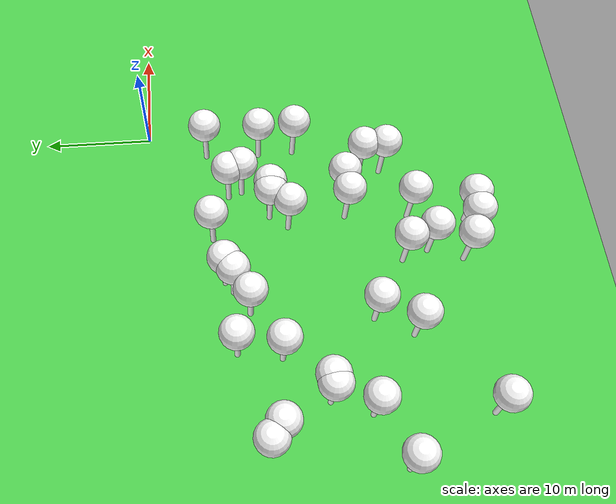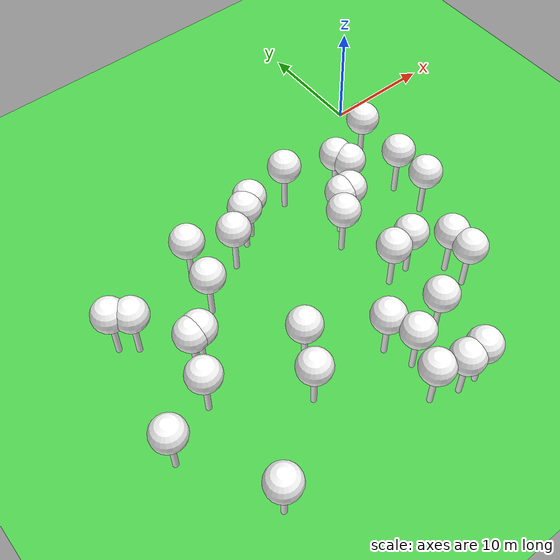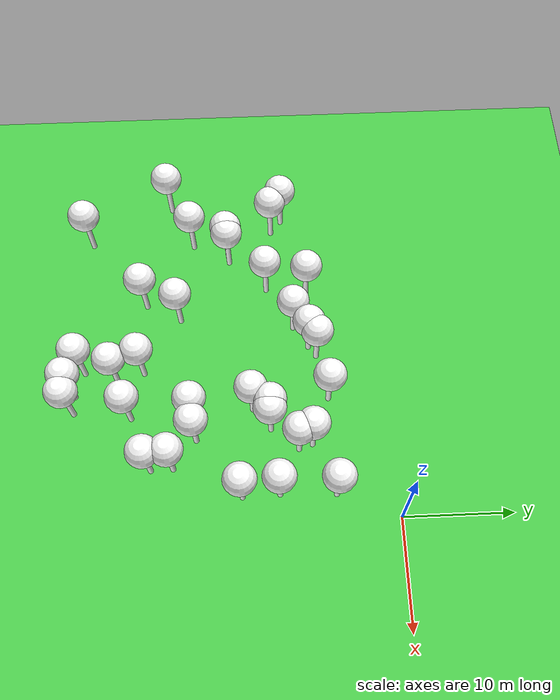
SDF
<sdf version="1.8">
 <world name="forest_world">
  <model name="tree_simple418">
   <static>1</static>
   <link name="link">
    <pose>0 0 0.1 0 -0 0</pose>
    <collision name="collision_trunk">
     <pose>0 0 2 0 -0 0</pose>
     <geometry><cylinder><radius>0.25</radius><length>4</length></cylinder></geometry>
    </collision>
    <collision name="collision_treetop">
     <pose>0 0 5.2 0 -0 0</pose>
     <geometry><sphere><radius>1.5</radius></sphere></geometry>
    </collision>
    <visual name="trunk_418">
     <pose>0 0 2 0 -0 0</pose>
     <geometry><cylinder><radius>0.25</radius><length>4</length></cylinder></geometry>
     <material>
      <ambient>0.5 0.5 0.5 1</ambient>
      <diffuse>1.0 1.0 1.0 1</diffuse>
      <specular>0.0 0.0 0.0 1</specular>
      <pbr>
       <metal>
        <albedo_map>file://textures/tree_simple_trunk.jpg</albedo_map>
        <metalness>0.0</metalness>
        <roughness>0.8</roughness>
       </metal>
      </pbr>
     </material>
    </visual>
    <visual name="treetop_418">
     <pose>0 0 5.2 0 -0 0</pose>
     <geometry><sphere><radius>1.5</radius></sphere></geometry>
     <material>
      <ambient>0.5 0.5 0.5 1</ambient>
      <diffuse>1.0 1.0 1.0 1</diffuse>
      <specular>0.0 0.0 0.0 1</specular>
      <pbr>
       <metal>
        <albedo_map>file://textures/tree_simple_treetop.jpg</albedo_map>
        <metalness>0.0</metalness>
        <roughness>0.9</roughness>
       </metal>
      </pbr>
     </material>
    </visual>
   </link>
   <pose>-22.9841604277 -7.39292719752 0 0 -0 0</pose>
  </model>
  <model name="tree_simple415">
   <static>1</static>
   <link name="link">
    <pose>0 0 0.1 0 -0 0</pose>
    <collision name="collision_trunk">
     <pose>0 0 2 0 -0 0</pose>
     <geometry><cylinder><radius>0.25</radius><length>4</length></cylinder></geometry>
    </collision>
    <collision name="collision_treetop">
     <pose>0 0 5.2 0 -0 0</pose>
     <geometry><sphere><radius>1.5</radius></sphere></geometry>
    </collision>
    <visual name="trunk_415">
     <pose>0 0 2 0 -0 0</pose>
     <geometry><cylinder><radius>0.25</radius><length>4</length></cylinder></geometry>
     <material>
      <ambient>0.5 0.5 0.5 1</ambient>
      <diffuse>1.0 1.0 1.0 1</diffuse>
      <specular>0.0 0.0 0.0 1</specular>
      <pbr>
       <metal>
        <albedo_map>file://textures/tree_simple_trunk.jpg</albedo_map>
        <metalness>0.0</metalness>
        <roughness>0.8</roughness>
       </metal>
      </pbr>
     </material>
    </visual>
    <visual name="treetop_415">
     <pose>0 0 5.2 0 -0 0</pose>
     <geometry><sphere><radius>1.5</radius></sphere></geometry>
     <material>
      <ambient>0.5 0.5 0.5 1</ambient>
      <diffuse>1.0 1.0 1.0 1</diffuse>
      <specular>0.0 0.0 0.0 1</specular>
      <pbr>
       <metal>
        <albedo_map>file://textures/tree_simple_treetop.jpg</albedo_map>
        <metalness>0.0</metalness>
        <roughness>0.9</roughness>
       </metal>
      </pbr>
     </material>
    </visual>
   </link>
   <pose>-11.6355979465 -5.8252534874 0 0 -0 0</pose>
  </model>
  <model name="tree_simple395">
   <static>1</static>
   <link name="link">
    <pose>0 0 0.1 0 -0 0</pose>
    <collision name="collision_trunk">
     <pose>0 0 2 0 -0 0</pose>
     <geometry><cylinder><radius>0.25</radius><length>4</length></cylinder></geometry>
    </collision>
    <collision name="collision_treetop">
     <pose>0 0 5.2 0 -0 0</pose>
     <geometry><sphere><radius>1.5</radius></sphere></geometry>
    </collision>
    <visual name="trunk_395">
     <pose>0 0 2 0 -0 0</pose>
     <geometry><cylinder><radius>0.25</radius><length>4</length></cylinder></geometry>
     <material>
      <ambient>0.5 0.5 0.5 1</ambient>
      <diffuse>1.0 1.0 1.0 1</diffuse>
      <specular>0.0 0.0 0.0 1</specular>
      <pbr>
       <metal>
        <albedo_map>file://textures/tree_simple_trunk.jpg</albedo_map>
        <metalness>0.0</metalness>
        <roughness>0.8</roughness>
       </metal>
      </pbr>
     </material>
    </visual>
    <visual name="treetop_395">
     <pose>0 0 5.2 0 -0 0</pose>
     <geometry><sphere><radius>1.5</radius></sphere></geometry>
     <material>
      <ambient>0.5 0.5 0.5 1</ambient>
      <diffuse>1.0 1.0 1.0 1</diffuse>
      <specular>0.0 0.0 0.0 1</specular>
      <pbr>
       <metal>
        <albedo_map>file://textures/tree_simple_treetop.jpg</albedo_map>
        <metalness>0.0</metalness>
        <roughness>0.9</roughness>
       </metal>
      </pbr>
     </material>
    </visual>
   </link>
   <pose>-14.8909068885 -23.0244241553 0 0 -0 0</pose>
  </model>
  <model name="tree_simple392">
   <static>1</static>
   <link name="link">
    <pose>0 0 0.1 0 -0 0</pose>
    <collision name="collision_trunk">
     <pose>0 0 2 0 -0 0</pose>
     <geometry><cylinder><radius>0.25</radius><length>4</length></cylinder></geometry>
    </collision>
    <collision name="collision_treetop">
     <pose>0 0 5.2 0 -0 0</pose>
     <geometry><sphere><radius>1.5</radius></sphere></geometry>
    </collision>
    <visual name="trunk_392">
     <pose>0 0 2 0 -0 0</pose>
     <geometry><cylinder><radius>0.25</radius><length>4</length></cylinder></geometry>
     <material>
      <ambient>0.5 0.5 0.5 1</ambient>
      <diffuse>1.0 1.0 1.0 1</diffuse>
      <specular>0.0 0.0 0.0 1</specular>
      <pbr>
       <metal>
        <albedo_map>file://textures/tree_simple_trunk.jpg</albedo_map>
        <metalness>0.0</metalness>
        <roughness>0.8</roughness>
       </metal>
      </pbr>
     </material>
    </visual>
    <visual name="treetop_392">
     <pose>0 0 5.2 0 -0 0</pose>
     <geometry><sphere><radius>1.5</radius></sphere></geometry>
     <material>
      <ambient>0.5 0.5 0.5 1</ambient>
      <diffuse>1.0 1.0 1.0 1</diffuse>
      <specular>0.0 0.0 0.0 1</specular>
      <pbr>
       <metal>
        <albedo_map>file://textures/tree_simple_treetop.jpg</albedo_map>
        <metalness>0.0</metalness>
        <roughness>0.9</roughness>
       </metal>
      </pbr>
     </material>
    </visual>
   </link>
   <pose>-2.49227665262 -10.6347787598 0 0 -0 0</pose>
  </model>
  <model name="tree_simple386">
   <static>1</static>
   <link name="link">
    <pose>0 0 0.1 0 -0 0</pose>
    <collision name="collision_trunk">
     <pose>0 0 2 0 -0 0</pose>
     <geometry><cylinder><radius>0.25</radius><length>4</length></cylinder></geometry>
    </collision>
    <collision name="collision_treetop">
     <pose>0 0 5.2 0 -0 0</pose>
     <geometry><sphere><radius>1.5</radius></sphere></geometry>
    </collision>
    <visual name="trunk_386">
     <pose>0 0 2 0 -0 0</pose>
     <geometry><cylinder><radius>0.25</radius><length>4</length></cylinder></geometry>
     <material>
      <ambient>0.5 0.5 0.5 1</ambient>
      <diffuse>1.0 1.0 1.0 1</diffuse>
      <specular>0.0 0.0 0.0 1</specular>
      <pbr>
       <metal>
        <albedo_map>file://textures/tree_simple_trunk.jpg</albedo_map>
        <metalness>0.0</metalness>
        <roughness>0.8</roughness>
       </metal>
      </pbr>
     </material>
    </visual>
    <visual name="treetop_386">
     <pose>0 0 5.2 0 -0 0</pose>
     <geometry><sphere><radius>1.5</radius></sphere></geometry>
     <material>
      <ambient>0.5 0.5 0.5 1</ambient>
      <diffuse>1.0 1.0 1.0 1</diffuse>
      <specular>0.0 0.0 0.0 1</specular>
      <pbr>
       <metal>
        <albedo_map>file://textures/tree_simple_treetop.jpg</albedo_map>
        <metalness>0.0</metalness>
        <roughness>0.9</roughness>
       </metal>
      </pbr>
     </material>
    </visual>
   </link>
   <pose>-19.2490777258 -8.77456979873 0 0 -0 0</pose>
  </model>
  <model name="tree_simple371">
   <static>1</static>
   <link name="link">
    <pose>0 0 0.1 0 -0 0</pose>
    <collision name="collision_trunk">
     <pose>0 0 2 0 -0 0</pose>
     <geometry><cylinder><radius>0.25</radius><length>4</length></cylinder></geometry>
    </collision>
    <collision name="collision_treetop">
     <pose>0 0 5.2 0 -0 0</pose>
     <geometry><sphere><radius>1.5</radius></sphere></geometry>
    </collision>
    <visual name="trunk_371">
     <pose>0 0 2 0 -0 0</pose>
     <geometry><cylinder><radius>0.25</radius><length>4</length></cylinder></geometry>
     <material>
      <ambient>0.5 0.5 0.5 1</ambient>
      <diffuse>1.0 1.0 1.0 1</diffuse>
      <specular>0.0 0.0 0.0 1</specular>
      <pbr>
       <metal>
        <albedo_map>file://textures/tree_simple_trunk.jpg</albedo_map>
        <metalness>0.0</metalness>
        <roughness>0.8</roughness>
       </metal>
      </pbr>
     </material>
    </visual>
    <visual name="treetop_371">
     <pose>0 0 5.2 0 -0 0</pose>
     <geometry><sphere><radius>1.5</radius></sphere></geometry>
     <material>
      <ambient>0.5 0.5 0.5 1</ambient>
      <diffuse>1.0 1.0 1.0 1</diffuse>
      <specular>0.0 0.0 0.0 1</specular>
      <pbr>
       <metal>
        <albedo_map>file://textures/tree_simple_treetop.jpg</albedo_map>
        <metalness>0.0</metalness>
        <roughness>0.9</roughness>
       </metal>
      </pbr>
     </material>
    </visual>
   </link>
   <pose>-15.0952400949 -28.608477139 0 0 -0 0</pose>
  </model>
  <model name="tree_simple364">
   <static>1</static>
   <link name="link">
    <pose>0 0 0.1 0 -0 0</pose>
    <collision name="collision_trunk">
     <pose>0 0 2 0 -0 0</pose>
     <geometry><cylinder><radius>0.25</radius><length>4</length></cylinder></geometry>
    </collision>
    <collision name="collision_treetop">
     <pose>0 0 5.2 0 -0 0</pose>
     <geometry><sphere><radius>1.5</radius></sphere></geometry>
    </collision>
    <visual name="trunk_364">
     <pose>0 0 2 0 -0 0</pose>
     <geometry><cylinder><radius>0.25</radius><length>4</length></cylinder></geometry>
     <material>
      <ambient>0.5 0.5 0.5 1</ambient>
      <diffuse>1.0 1.0 1.0 1</diffuse>
      <specular>0.0 0.0 0.0 1</specular>
      <pbr>
       <metal>
        <albedo_map>file://textures/tree_simple_trunk.jpg</albedo_map>
        <metalness>0.0</metalness>
        <roughness>0.8</roughness>
       </metal>
      </pbr>
     </material>
    </visual>
    <visual name="treetop_364">
     <pose>0 0 5.2 0 -0 0</pose>
     <geometry><sphere><radius>1.5</radius></sphere></geometry>
     <material>
      <ambient>0.5 0.5 0.5 1</ambient>
      <diffuse>1.0 1.0 1.0 1</diffuse>
      <specular>0.0 0.0 0.0 1</specular>
      <pbr>
       <metal>
        <albedo_map>file://textures/tree_simple_treetop.jpg</albedo_map>
        <metalness>0.0</metalness>
        <roughness>0.9</roughness>
       </metal>
      </pbr>
     </material>
    </visual>
   </link>
   <pose>-5.23612591395 -20.1562951187 0 0 -0 0</pose>
  </model>
  <model name="tree_simple349">
   <static>1</static>
   <link name="link">
    <pose>0 0 0.1 0 -0 0</pose>
    <collision name="collision_trunk">
     <pose>0 0 2 0 -0 0</pose>
     <geometry><cylinder><radius>0.25</radius><length>4</length></cylinder></geometry>
    </collision>
    <collision name="collision_treetop">
     <pose>0 0 5.2 0 -0 0</pose>
     <geometry><sphere><radius>1.5</radius></sphere></geometry>
    </collision>
    <visual name="trunk_349">
     <pose>0 0 2 0 -0 0</pose>
     <geometry><cylinder><radius>0.25</radius><length>4</length></cylinder></geometry>
     <material>
      <ambient>0.5 0.5 0.5 1</ambient>
      <diffuse>1.0 1.0 1.0 1</diffuse>
      <specular>0.0 0.0 0.0 1</specular>
      <pbr>
       <metal>
        <albedo_map>file://textures/tree_simple_trunk.jpg</albedo_map>
        <metalness>0.0</metalness>
        <roughness>0.8</roughness>
       </metal>
      </pbr>
     </material>
    </visual>
    <visual name="treetop_349">
     <pose>0 0 5.2 0 -0 0</pose>
     <geometry><sphere><radius>1.5</radius></sphere></geometry>
     <material>
      <ambient>0.5 0.5 0.5 1</ambient>
      <diffuse>1.0 1.0 1.0 1</diffuse>
      <specular>0.0 0.0 0.0 1</specular>
      <pbr>
       <metal>
        <albedo_map>file://textures/tree_simple_treetop.jpg</albedo_map>
        <metalness>0.0</metalness>
        <roughness>0.9</roughness>
       </metal>
      </pbr>
     </material>
    </visual>
   </link>
   <pose>-20.4686708935 -19.6389151122 0 0 -0 0</pose>
  </model>
  <model name="tree_simple347">
   <static>1</static>
   <link name="link">
    <pose>0 0 0.1 0 -0 0</pose>
    <collision name="collision_trunk">
     <pose>0 0 2 0 -0 0</pose>
     <geometry><cylinder><radius>0.25</radius><length>4</length></cylinder></geometry>
    </collision>
    <collision name="collision_treetop">
     <pose>0 0 5.2 0 -0 0</pose>
     <geometry><sphere><radius>1.5</radius></sphere></geometry>
    </collision>
    <visual name="trunk_347">
     <pose>0 0 2 0 -0 0</pose>
     <geometry><cylinder><radius>0.25</radius><length>4</length></cylinder></geometry>
     <material>
      <ambient>0.5 0.5 0.5 1</ambient>
      <diffuse>1.0 1.0 1.0 1</diffuse>
      <specular>0.0 0.0 0.0 1</specular>
      <pbr>
       <metal>
        <albedo_map>file://textures/tree_simple_trunk.jpg</albedo_map>
        <metalness>0.0</metalness>
        <roughness>0.8</roughness>
       </metal>
      </pbr>
     </material>
    </visual>
    <visual name="treetop_347">
     <pose>0 0 5.2 0 -0 0</pose>
     <geometry><sphere><radius>1.5</radius></sphere></geometry>
     <material>
      <ambient>0.5 0.5 0.5 1</ambient>
      <diffuse>1.0 1.0 1.0 1</diffuse>
      <specular>0.0 0.0 0.0 1</specular>
      <pbr>
       <metal>
        <albedo_map>file://textures/tree_simple_treetop.jpg</albedo_map>
        <metalness>0.0</metalness>
        <roughness>0.9</roughness>
       </metal>
      </pbr>
     </material>
    </visual>
   </link>
   <pose>-10.2981062424 -24.1175281228 0 0 -0 0</pose>
  </model>
  <model name="tree_simple322">
   <static>1</static>
   <link name="link">
    <pose>0 0 0.1 0 -0 0</pose>
    <collision name="collision_trunk">
     <pose>0 0 2 0 -0 0</pose>
     <geometry><cylinder><radius>0.25</radius><length>4</length></cylinder></geometry>
    </collision>
    <collision name="collision_treetop">
     <pose>0 0 5.2 0 -0 0</pose>
     <geometry><sphere><radius>1.5</radius></sphere></geometry>
    </collision>
    <visual name="trunk_322">
     <pose>0 0 2 0 -0 0</pose>
     <geometry><cylinder><radius>0.25</radius><length>4</length></cylinder></geometry>
     <material>
      <ambient>0.5 0.5 0.5 1</ambient>
      <diffuse>1.0 1.0 1.0 1</diffuse>
      <specular>0.0 0.0 0.0 1</specular>
      <pbr>
       <metal>
        <albedo_map>file://textures/tree_simple_trunk.jpg</albedo_map>
        <metalness>0.0</metalness>
        <roughness>0.8</roughness>
       </metal>
      </pbr>
     </material>
    </visual>
    <visual name="treetop_322">
     <pose>0 0 5.2 0 -0 0</pose>
     <geometry><sphere><radius>1.5</radius></sphere></geometry>
     <material>
      <ambient>0.5 0.5 0.5 1</ambient>
      <diffuse>1.0 1.0 1.0 1</diffuse>
      <specular>0.0 0.0 0.0 1</specular>
      <pbr>
       <metal>
        <albedo_map>file://textures/tree_simple_treetop.jpg</albedo_map>
        <metalness>0.0</metalness>
        <roughness>0.9</roughness>
       </metal>
      </pbr>
     </material>
    </visual>
   </link>
   <pose>-10.7837387112 -12.8598856653 0 0 -0 0</pose>
  </model>
  <model name="tree_simple303">
   <static>1</static>
   <link name="link">
    <pose>0 0 0.1 0 -0 0</pose>
    <collision name="collision_trunk">
     <pose>0 0 2 0 -0 0</pose>
     <geometry><cylinder><radius>0.25</radius><length>4</length></cylinder></geometry>
    </collision>
    <collision name="collision_treetop">
     <pose>0 0 5.2 0 -0 0</pose>
     <geometry><sphere><radius>1.5</radius></sphere></geometry>
    </collision>
    <visual name="trunk_303">
     <pose>0 0 2 0 -0 0</pose>
     <geometry><cylinder><radius>0.25</radius><length>4</length></cylinder></geometry>
     <material>
      <ambient>0.5 0.5 0.5 1</ambient>
      <diffuse>1.0 1.0 1.0 1</diffuse>
      <specular>0.0 0.0 0.0 1</specular>
      <pbr>
       <metal>
        <albedo_map>file://textures/tree_simple_trunk.jpg</albedo_map>
        <metalness>0.0</metalness>
        <roughness>0.8</roughness>
       </metal>
      </pbr>
     </material>
    </visual>
    <visual name="treetop_303">
     <pose>0 0 5.2 0 -0 0</pose>
     <geometry><sphere><radius>1.5</radius></sphere></geometry>
     <material>
      <ambient>0.5 0.5 0.5 1</ambient>
      <diffuse>1.0 1.0 1.0 1</diffuse>
      <specular>0.0 0.0 0.0 1</specular>
      <pbr>
       <metal>
        <albedo_map>file://textures/tree_simple_treetop.jpg</albedo_map>
        <metalness>0.0</metalness>
        <roughness>0.9</roughness>
       </metal>
      </pbr>
     </material>
    </visual>
   </link>
   <pose>-9.56094886719 -11.2139048457 0 0 -0 0</pose>
  </model>
  <model name="tree_simple276">
   <static>1</static>
   <link name="link">
    <pose>0 0 0.1 0 -0 0</pose>
    <collision name="collision_trunk">
     <pose>0 0 2 0 -0 0</pose>
     <geometry><cylinder><radius>0.25</radius><length>4</length></cylinder></geometry>
    </collision>
    <collision name="collision_treetop">
     <pose>0 0 5.2 0 -0 0</pose>
     <geometry><sphere><radius>1.5</radius></sphere></geometry>
    </collision>
    <visual name="trunk_276">
     <pose>0 0 2 0 -0 0</pose>
     <geometry><cylinder><radius>0.25</radius><length>4</length></cylinder></geometry>
     <material>
      <ambient>0.5 0.5 0.5 1</ambient>
      <diffuse>1.0 1.0 1.0 1</diffuse>
      <specular>0.0 0.0 0.0 1</specular>
      <pbr>
       <metal>
        <albedo_map>file://textures/tree_simple_trunk.jpg</albedo_map>
        <metalness>0.0</metalness>
        <roughness>0.8</roughness>
       </metal>
      </pbr>
     </material>
    </visual>
    <visual name="treetop_276">
     <pose>0 0 5.2 0 -0 0</pose>
     <geometry><sphere><radius>1.5</radius></sphere></geometry>
     <material>
      <ambient>0.5 0.5 0.5 1</ambient>
      <diffuse>1.0 1.0 1.0 1</diffuse>
      <specular>0.0 0.0 0.0 1</specular>
      <pbr>
       <metal>
        <albedo_map>file://textures/tree_simple_treetop.jpg</albedo_map>
        <metalness>0.0</metalness>
        <roughness>0.9</roughness>
       </metal>
      </pbr>
     </material>
    </visual>
   </link>
   <pose>-29.5152065305 -28.5569261037 0 0 -0 0</pose>
  </model>
  <model name="tree_simple272">
   <static>1</static>
   <link name="link">
    <pose>0 0 0.1 0 -0 0</pose>
    <collision name="collision_trunk">
     <pose>0 0 2 0 -0 0</pose>
     <geometry><cylinder><radius>0.25</radius><length>4</length></cylinder></geometry>
    </collision>
    <collision name="collision_treetop">
     <pose>0 0 5.2 0 -0 0</pose>
     <geometry><sphere><radius>1.5</radius></sphere></geometry>
    </collision>
    <visual name="trunk_272">
     <pose>0 0 2 0 -0 0</pose>
     <geometry><cylinder><radius>0.25</radius><length>4</length></cylinder></geometry>
     <material>
      <ambient>0.5 0.5 0.5 1</ambient>
      <diffuse>1.0 1.0 1.0 1</diffuse>
      <specular>0.0 0.0 0.0 1</specular>
      <pbr>
       <metal>
        <albedo_map>file://textures/tree_simple_trunk.jpg</albedo_map>
        <metalness>0.0</metalness>
        <roughness>0.8</roughness>
       </metal>
      </pbr>
     </material>
    </visual>
    <visual name="treetop_272">
     <pose>0 0 5.2 0 -0 0</pose>
     <geometry><sphere><radius>1.5</radius></sphere></geometry>
     <material>
      <ambient>0.5 0.5 0.5 1</ambient>
      <diffuse>1.0 1.0 1.0 1</diffuse>
      <specular>0.0 0.0 0.0 1</specular>
      <pbr>
       <metal>
        <albedo_map>file://textures/tree_simple_treetop.jpg</albedo_map>
        <metalness>0.0</metalness>
        <roughness>0.9</roughness>
       </metal>
      </pbr>
     </material>
    </visual>
   </link>
   <pose>-28.9961141051 -18.3973115949 0 0 -0 0</pose>
  </model>
  <model name="tree_simple268">
   <static>1</static>
   <link name="link">
    <pose>0 0 0.1 0 -0 0</pose>
    <collision name="collision_trunk">
     <pose>0 0 2 0 -0 0</pose>
     <geometry><cylinder><radius>0.25</radius><length>4</length></cylinder></geometry>
    </collision>
    <collision name="collision_treetop">
     <pose>0 0 5.2 0 -0 0</pose>
     <geometry><sphere><radius>1.5</radius></sphere></geometry>
    </collision>
    <visual name="trunk_268">
     <pose>0 0 2 0 -0 0</pose>
     <geometry><cylinder><radius>0.25</radius><length>4</length></cylinder></geometry>
     <material>
      <ambient>0.5 0.5 0.5 1</ambient>
      <diffuse>1.0 1.0 1.0 1</diffuse>
      <specular>0.0 0.0 0.0 1</specular>
      <pbr>
       <metal>
        <albedo_map>file://textures/tree_simple_trunk.jpg</albedo_map>
        <metalness>0.0</metalness>
        <roughness>0.8</roughness>
       </metal>
      </pbr>
     </material>
    </visual>
    <visual name="treetop_268">
     <pose>0 0 5.2 0 -0 0</pose>
     <geometry><sphere><radius>1.5</radius></sphere></geometry>
     <material>
      <ambient>0.5 0.5 0.5 1</ambient>
      <diffuse>1.0 1.0 1.0 1</diffuse>
      <specular>0.0 0.0 0.0 1</specular>
      <pbr>
       <metal>
        <albedo_map>file://textures/tree_simple_treetop.jpg</albedo_map>
        <metalness>0.0</metalness>
        <roughness>0.9</roughness>
       </metal>
      </pbr>
     </material>
    </visual>
   </link>
   <pose>-9.9717965144 -18.2645258901 0 0 -0 0</pose>
  </model>
  <model name="tree_simple253">
   <static>1</static>
   <link name="link">
    <pose>0 0 0.1 0 -0 0</pose>
    <collision name="collision_trunk">
     <pose>0 0 2 0 -0 0</pose>
     <geometry><cylinder><radius>0.25</radius><length>4</length></cylinder></geometry>
    </collision>
    <collision name="collision_treetop">
     <pose>0 0 5.2 0 -0 0</pose>
     <geometry><sphere><radius>1.5</radius></sphere></geometry>
    </collision>
    <visual name="trunk_253">
     <pose>0 0 2 0 -0 0</pose>
     <geometry><cylinder><radius>0.25</radius><length>4</length></cylinder></geometry>
     <material>
      <ambient>0.5 0.5 0.5 1</ambient>
      <diffuse>1.0 1.0 1.0 1</diffuse>
      <specular>0.0 0.0 0.0 1</specular>
      <pbr>
       <metal>
        <albedo_map>file://textures/tree_simple_trunk.jpg</albedo_map>
        <metalness>0.0</metalness>
        <roughness>0.8</roughness>
       </metal>
      </pbr>
     </material>
    </visual>
    <visual name="treetop_253">
     <pose>0 0 5.2 0 -0 0</pose>
     <geometry><sphere><radius>1.5</radius></sphere></geometry>
     <material>
      <ambient>0.5 0.5 0.5 1</ambient>
      <diffuse>1.0 1.0 1.0 1</diffuse>
      <specular>0.0 0.0 0.0 1</specular>
      <pbr>
       <metal>
        <albedo_map>file://textures/tree_simple_treetop.jpg</albedo_map>
        <metalness>0.0</metalness>
        <roughness>0.9</roughness>
       </metal>
      </pbr>
     </material>
    </visual>
   </link>
   <pose>-6.71887912458 -8.7537434381 0 0 -0 0</pose>
  </model>
  <model name="tree_simple234">
   <static>1</static>
   <link name="link">
    <pose>0 0 0.1 0 -0 0</pose>
    <collision name="collision_trunk">
     <pose>0 0 2 0 -0 0</pose>
     <geometry><cylinder><radius>0.25</radius><length>4</length></cylinder></geometry>
    </collision>
    <collision name="collision_treetop">
     <pose>0 0 5.2 0 -0 0</pose>
     <geometry><sphere><radius>1.5</radius></sphere></geometry>
    </collision>
    <visual name="trunk_234">
     <pose>0 0 2 0 -0 0</pose>
     <geometry><cylinder><radius>0.25</radius><length>4</length></cylinder></geometry>
     <material>
      <ambient>0.5 0.5 0.5 1</ambient>
      <diffuse>1.0 1.0 1.0 1</diffuse>
      <specular>0.0 0.0 0.0 1</specular>
      <pbr>
       <metal>
        <albedo_map>file://textures/tree_simple_trunk.jpg</albedo_map>
        <metalness>0.0</metalness>
        <roughness>0.8</roughness>
       </metal>
      </pbr>
     </material>
    </visual>
    <visual name="treetop_234">
     <pose>0 0 5.2 0 -0 0</pose>
     <geometry><sphere><radius>1.5</radius></sphere></geometry>
     <material>
      <ambient>0.5 0.5 0.5 1</ambient>
      <diffuse>1.0 1.0 1.0 1</diffuse>
      <specular>0.0 0.0 0.0 1</specular>
      <pbr>
       <metal>
        <albedo_map>file://textures/tree_simple_treetop.jpg</albedo_map>
        <metalness>0.0</metalness>
        <roughness>0.9</roughness>
       </metal>
      </pbr>
     </material>
    </visual>
   </link>
   <pose>-7.13671903639 -7.51188908491 0 0 -0 0</pose>
  </model>
  <model name="tree_simple221">
   <static>1</static>
   <link name="link">
    <pose>0 0 0.1 0 -0 0</pose>
    <collision name="collision_trunk">
     <pose>0 0 2 0 -0 0</pose>
     <geometry><cylinder><radius>0.25</radius><length>4</length></cylinder></geometry>
    </collision>
    <collision name="collision_treetop">
     <pose>0 0 5.2 0 -0 0</pose>
     <geometry><sphere><radius>1.5</radius></sphere></geometry>
    </collision>
    <visual name="trunk_221">
     <pose>0 0 2 0 -0 0</pose>
     <geometry><cylinder><radius>0.25</radius><length>4</length></cylinder></geometry>
     <material>
      <ambient>0.5 0.5 0.5 1</ambient>
      <diffuse>1.0 1.0 1.0 1</diffuse>
      <specular>0.0 0.0 0.0 1</specular>
      <pbr>
       <metal>
        <albedo_map>file://textures/tree_simple_trunk.jpg</albedo_map>
        <metalness>0.0</metalness>
        <roughness>0.8</roughness>
       </metal>
      </pbr>
     </material>
    </visual>
    <visual name="treetop_221">
     <pose>0 0 5.2 0 -0 0</pose>
     <geometry><sphere><radius>1.5</radius></sphere></geometry>
     <material>
      <ambient>0.5 0.5 0.5 1</ambient>
      <diffuse>1.0 1.0 1.0 1</diffuse>
      <specular>0.0 0.0 0.0 1</specular>
      <pbr>
       <metal>
        <albedo_map>file://textures/tree_simple_treetop.jpg</albedo_map>
        <metalness>0.0</metalness>
        <roughness>0.9</roughness>
       </metal>
      </pbr>
     </material>
    </visual>
   </link>
   <pose>-33.630014063 -20.7003393039 0 0 -0 0</pose>
  </model>
  <model name="tree_simple201">
   <static>1</static>
   <link name="link">
    <pose>0 0 0.1 0 -0 0</pose>
    <collision name="collision_trunk">
     <pose>0 0 2 0 -0 0</pose>
     <geometry><cylinder><radius>0.25</radius><length>4</length></cylinder></geometry>
    </collision>
    <collision name="collision_treetop">
     <pose>0 0 5.2 0 -0 0</pose>
     <geometry><sphere><radius>1.5</radius></sphere></geometry>
    </collision>
    <visual name="trunk_201">
     <pose>0 0 2 0 -0 0</pose>
     <geometry><cylinder><radius>0.25</radius><length>4</length></cylinder></geometry>
     <material>
      <ambient>0.5 0.5 0.5 1</ambient>
      <diffuse>1.0 1.0 1.0 1</diffuse>
      <specular>0.0 0.0 0.0 1</specular>
      <pbr>
       <metal>
        <albedo_map>file://textures/tree_simple_trunk.jpg</albedo_map>
        <metalness>0.0</metalness>
        <roughness>0.8</roughness>
       </metal>
      </pbr>
     </material>
    </visual>
    <visual name="treetop_201">
     <pose>0 0 5.2 0 -0 0</pose>
     <geometry><sphere><radius>1.5</radius></sphere></geometry>
     <material>
      <ambient>0.5 0.5 0.5 1</ambient>
      <diffuse>1.0 1.0 1.0 1</diffuse>
      <specular>0.0 0.0 0.0 1</specular>
      <pbr>
       <metal>
        <albedo_map>file://textures/tree_simple_treetop.jpg</albedo_map>
        <metalness>0.0</metalness>
        <roughness>0.9</roughness>
       </metal>
      </pbr>
     </material>
    </visual>
   </link>
   <pose>-16.1062713361 -6.72563548396 0 0 -0 0</pose>
  </model>
  <model name="tree_simple200">
   <static>1</static>
   <link name="link">
    <pose>0 0 0.1 0 -0 0</pose>
    <collision name="collision_trunk">
     <pose>0 0 2 0 -0 0</pose>
     <geometry><cylinder><radius>0.25</radius><length>4</length></cylinder></geometry>
    </collision>
    <collision name="collision_treetop">
     <pose>0 0 5.2 0 -0 0</pose>
     <geometry><sphere><radius>1.5</radius></sphere></geometry>
    </collision>
    <visual name="trunk_200">
     <pose>0 0 2 0 -0 0</pose>
     <geometry><cylinder><radius>0.25</radius><length>4</length></cylinder></geometry>
     <material>
      <ambient>0.5 0.5 0.5 1</ambient>
      <diffuse>1.0 1.0 1.0 1</diffuse>
      <specular>0.0 0.0 0.0 1</specular>
      <pbr>
       <metal>
        <albedo_map>file://textures/tree_simple_trunk.jpg</albedo_map>
        <metalness>0.0</metalness>
        <roughness>0.8</roughness>
       </metal>
      </pbr>
     </material>
    </visual>
    <visual name="treetop_200">
     <pose>0 0 5.2 0 -0 0</pose>
     <geometry><sphere><radius>1.5</radius></sphere></geometry>
     <material>
      <ambient>0.5 0.5 0.5 1</ambient>
      <diffuse>1.0 1.0 1.0 1</diffuse>
      <specular>0.0 0.0 0.0 1</specular>
      <pbr>
       <metal>
        <albedo_map>file://textures/tree_simple_treetop.jpg</albedo_map>
        <metalness>0.0</metalness>
        <roughness>0.9</roughness>
       </metal>
      </pbr>
     </material>
    </visual>
   </link>
   <pose>-22.1853775811 -22.9371972628 0 0 -0 0</pose>
  </model>
  <model name="tree_simple194">
   <static>1</static>
   <link name="link">
    <pose>0 0 0.1 0 -0 0</pose>
    <collision name="collision_trunk">
     <pose>0 0 2 0 -0 0</pose>
     <geometry><cylinder><radius>0.25</radius><length>4</length></cylinder></geometry>
    </collision>
    <collision name="collision_treetop">
     <pose>0 0 5.2 0 -0 0</pose>
     <geometry><sphere><radius>1.5</radius></sphere></geometry>
    </collision>
    <visual name="trunk_194">
     <pose>0 0 2 0 -0 0</pose>
     <geometry><cylinder><radius>0.25</radius><length>4</length></cylinder></geometry>
     <material>
      <ambient>0.5 0.5 0.5 1</ambient>
      <diffuse>1.0 1.0 1.0 1</diffuse>
      <specular>0.0 0.0 0.0 1</specular>
      <pbr>
       <metal>
        <albedo_map>file://textures/tree_simple_trunk.jpg</albedo_map>
        <metalness>0.0</metalness>
        <roughness>0.8</roughness>
       </metal>
      </pbr>
     </material>
    </visual>
    <visual name="treetop_194">
     <pose>0 0 5.2 0 -0 0</pose>
     <geometry><sphere><radius>1.5</radius></sphere></geometry>
     <material>
      <ambient>0.5 0.5 0.5 1</ambient>
      <diffuse>1.0 1.0 1.0 1</diffuse>
      <specular>0.0 0.0 0.0 1</specular>
      <pbr>
       <metal>
        <albedo_map>file://textures/tree_simple_treetop.jpg</albedo_map>
        <metalness>0.0</metalness>
        <roughness>0.9</roughness>
       </metal>
      </pbr>
     </material>
    </visual>
   </link>
   <pose>-23.6189562951 -11.2622665902 0 0 -0 0</pose>
  </model>
  <model name="tree_simple155">
   <static>1</static>
   <link name="link">
    <pose>0 0 0.1 0 -0 0</pose>
    <collision name="collision_trunk">
     <pose>0 0 2 0 -0 0</pose>
     <geometry><cylinder><radius>0.25</radius><length>4</length></cylinder></geometry>
    </collision>
    <collision name="collision_treetop">
     <pose>0 0 5.2 0 -0 0</pose>
     <geometry><sphere><radius>1.5</radius></sphere></geometry>
    </collision>
    <visual name="trunk_155">
     <pose>0 0 2 0 -0 0</pose>
     <geometry><cylinder><radius>0.25</radius><length>4</length></cylinder></geometry>
     <material>
      <ambient>0.5 0.5 0.5 1</ambient>
      <diffuse>1.0 1.0 1.0 1</diffuse>
      <specular>0.0 0.0 0.0 1</specular>
      <pbr>
       <metal>
        <albedo_map>file://textures/tree_simple_trunk.jpg</albedo_map>
        <metalness>0.0</metalness>
        <roughness>0.8</roughness>
       </metal>
      </pbr>
     </material>
    </visual>
    <visual name="treetop_155">
     <pose>0 0 5.2 0 -0 0</pose>
     <geometry><sphere><radius>1.5</radius></sphere></geometry>
     <material>
      <ambient>0.5 0.5 0.5 1</ambient>
      <diffuse>1.0 1.0 1.0 1</diffuse>
      <specular>0.0 0.0 0.0 1</specular>
      <pbr>
       <metal>
        <albedo_map>file://textures/tree_simple_treetop.jpg</albedo_map>
        <metalness>0.0</metalness>
        <roughness>0.9</roughness>
       </metal>
      </pbr>
     </material>
    </visual>
   </link>
   <pose>-2.3717624472 -13.9733365428 0 0 -0 0</pose>
  </model>
  <model name="tree_simple152">
   <static>1</static>
   <link name="link">
    <pose>0 0 0.1 0 -0 0</pose>
    <collision name="collision_trunk">
     <pose>0 0 2 0 -0 0</pose>
     <geometry><cylinder><radius>0.25</radius><length>4</length></cylinder></geometry>
    </collision>
    <collision name="collision_treetop">
     <pose>0 0 5.2 0 -0 0</pose>
     <geometry><sphere><radius>1.5</radius></sphere></geometry>
    </collision>
    <visual name="trunk_152">
     <pose>0 0 2 0 -0 0</pose>
     <geometry><cylinder><radius>0.25</radius><length>4</length></cylinder></geometry>
     <material>
      <ambient>0.5 0.5 0.5 1</ambient>
      <diffuse>1.0 1.0 1.0 1</diffuse>
      <specular>0.0 0.0 0.0 1</specular>
      <pbr>
       <metal>
        <albedo_map>file://textures/tree_simple_trunk.jpg</albedo_map>
        <metalness>0.0</metalness>
        <roughness>0.8</roughness>
       </metal>
      </pbr>
     </material>
    </visual>
    <visual name="treetop_152">
     <pose>0 0 5.2 0 -0 0</pose>
     <geometry><sphere><radius>1.5</radius></sphere></geometry>
     <material>
      <ambient>0.5 0.5 0.5 1</ambient>
      <diffuse>1.0 1.0 1.0 1</diffuse>
      <specular>0.0 0.0 0.0 1</specular>
      <pbr>
       <metal>
        <albedo_map>file://textures/tree_simple_treetop.jpg</albedo_map>
        <metalness>0.0</metalness>
        <roughness>0.9</roughness>
       </metal>
      </pbr>
     </material>
    </visual>
   </link>
   <pose>-12.7268570034 -29.4125065477 0 0 -0 0</pose>
  </model>
  <model name="tree_simple149">
   <static>1</static>
   <link name="link">
    <pose>0 0 0.1 0 -0 0</pose>
    <collision name="collision_trunk">
     <pose>0 0 2 0 -0 0</pose>
     <geometry><cylinder><radius>0.25</radius><length>4</length></cylinder></geometry>
    </collision>
    <collision name="collision_treetop">
     <pose>0 0 5.2 0 -0 0</pose>
     <geometry><sphere><radius>1.5</radius></sphere></geometry>
    </collision>
    <visual name="trunk_149">
     <pose>0 0 2 0 -0 0</pose>
     <geometry><cylinder><radius>0.25</radius><length>4</length></cylinder></geometry>
     <material>
      <ambient>0.5 0.5 0.5 1</ambient>
      <diffuse>1.0 1.0 1.0 1</diffuse>
      <specular>0.0 0.0 0.0 1</specular>
      <pbr>
       <metal>
        <albedo_map>file://textures/tree_simple_trunk.jpg</albedo_map>
        <metalness>0.0</metalness>
        <roughness>0.8</roughness>
       </metal>
      </pbr>
     </material>
    </visual>
    <visual name="treetop_149">
     <pose>0 0 5.2 0 -0 0</pose>
     <geometry><sphere><radius>1.5</radius></sphere></geometry>
     <material>
      <ambient>0.5 0.5 0.5 1</ambient>
      <diffuse>1.0 1.0 1.0 1</diffuse>
      <specular>0.0 0.0 0.0 1</specular>
      <pbr>
       <metal>
        <albedo_map>file://textures/tree_simple_treetop.jpg</albedo_map>
        <metalness>0.0</metalness>
        <roughness>0.9</roughness>
       </metal>
      </pbr>
     </material>
    </visual>
   </link>
   <pose>-30.3771264781 -10.615045033 0 0 -0 0</pose>
  </model>
  <model name="tree_simple138">
   <static>1</static>
   <link name="link">
    <pose>0 0 0.1 0 -0 0</pose>
    <collision name="collision_trunk">
     <pose>0 0 2 0 -0 0</pose>
     <geometry><cylinder><radius>0.25</radius><length>4</length></cylinder></geometry>
    </collision>
    <collision name="collision_treetop">
     <pose>0 0 5.2 0 -0 0</pose>
     <geometry><sphere><radius>1.5</radius></sphere></geometry>
    </collision>
    <visual name="trunk_138">
     <pose>0 0 2 0 -0 0</pose>
     <geometry><cylinder><radius>0.25</radius><length>4</length></cylinder></geometry>
     <material>
      <ambient>0.5 0.5 0.5 1</ambient>
      <diffuse>1.0 1.0 1.0 1</diffuse>
      <specular>0.0 0.0 0.0 1</specular>
      <pbr>
       <metal>
        <albedo_map>file://textures/tree_simple_trunk.jpg</albedo_map>
        <metalness>0.0</metalness>
        <roughness>0.8</roughness>
       </metal>
      </pbr>
     </material>
    </visual>
    <visual name="treetop_138">
     <pose>0 0 5.2 0 -0 0</pose>
     <geometry><sphere><radius>1.5</radius></sphere></geometry>
     <material>
      <ambient>0.5 0.5 0.5 1</ambient>
      <diffuse>1.0 1.0 1.0 1</diffuse>
      <specular>0.0 0.0 0.0 1</specular>
      <pbr>
       <metal>
        <albedo_map>file://textures/tree_simple_treetop.jpg</albedo_map>
        <metalness>0.0</metalness>
        <roughness>0.9</roughness>
       </metal>
      </pbr>
     </material>
    </visual>
   </link>
   <pose>-8.7404095495 -11.2488158501 0 0 -0 0</pose>
  </model>
  <model name="tree_simple89">
   <static>1</static>
   <link name="link">
    <pose>0 0 0.1 0 -0 0</pose>
    <collision name="collision_trunk">
     <pose>0 0 2 0 -0 0</pose>
     <geometry><cylinder><radius>0.25</radius><length>4</length></cylinder></geometry>
    </collision>
    <collision name="collision_treetop">
     <pose>0 0 5.2 0 -0 0</pose>
     <geometry><sphere><radius>1.5</radius></sphere></geometry>
    </collision>
    <visual name="trunk_89">
     <pose>0 0 2 0 -0 0</pose>
     <geometry><cylinder><radius>0.25</radius><length>4</length></cylinder></geometry>
     <material>
      <ambient>0.5 0.5 0.5 1</ambient>
      <diffuse>1.0 1.0 1.0 1</diffuse>
      <specular>0.0 0.0 0.0 1</specular>
      <pbr>
       <metal>
        <albedo_map>file://textures/tree_simple_trunk.jpg</albedo_map>
        <metalness>0.0</metalness>
        <roughness>0.8</roughness>
       </metal>
      </pbr>
     </material>
    </visual>
    <visual name="treetop_89">
     <pose>0 0 5.2 0 -0 0</pose>
     <geometry><sphere><radius>1.5</radius></sphere></geometry>
     <material>
      <ambient>0.5 0.5 0.5 1</ambient>
      <diffuse>1.0 1.0 1.0 1</diffuse>
      <specular>0.0 0.0 0.0 1</specular>
      <pbr>
       <metal>
        <albedo_map>file://textures/tree_simple_treetop.jpg</albedo_map>
        <metalness>0.0</metalness>
        <roughness>0.9</roughness>
       </metal>
      </pbr>
     </material>
    </visual>
   </link>
   <pose>-14.0445145291 -25.4354437198 0 0 -0 0</pose>
  </model>
  <model name="tree_simple76">
   <static>1</static>
   <link name="link">
    <pose>0 0 0.1 0 -0 0</pose>
    <collision name="collision_trunk">
     <pose>0 0 2 0 -0 0</pose>
     <geometry><cylinder><radius>0.25</radius><length>4</length></cylinder></geometry>
    </collision>
    <collision name="collision_treetop">
     <pose>0 0 5.2 0 -0 0</pose>
     <geometry><sphere><radius>1.5</radius></sphere></geometry>
    </collision>
    <visual name="trunk_76">
     <pose>0 0 2 0 -0 0</pose>
     <geometry><cylinder><radius>0.25</radius><length>4</length></cylinder></geometry>
     <material>
      <ambient>0.5 0.5 0.5 1</ambient>
      <diffuse>1.0 1.0 1.0 1</diffuse>
      <specular>0.0 0.0 0.0 1</specular>
      <pbr>
       <metal>
        <albedo_map>file://textures/tree_simple_trunk.jpg</albedo_map>
        <metalness>0.0</metalness>
        <roughness>0.8</roughness>
       </metal>
      </pbr>
     </material>
    </visual>
    <visual name="treetop_76">
     <pose>0 0 5.2 0 -0 0</pose>
     <geometry><sphere><radius>1.5</radius></sphere></geometry>
     <material>
      <ambient>0.5 0.5 0.5 1</ambient>
      <diffuse>1.0 1.0 1.0 1</diffuse>
      <specular>0.0 0.0 0.0 1</specular>
      <pbr>
       <metal>
        <albedo_map>file://textures/tree_simple_treetop.jpg</albedo_map>
        <metalness>0.0</metalness>
        <roughness>0.9</roughness>
       </metal>
      </pbr>
     </material>
    </visual>
   </link>
   <pose>-27.7086729522 -14.9466841588 0 0 -0 0</pose>
  </model>
  <model name="tree_simple64">
   <static>1</static>
   <link name="link">
    <pose>0 0 0.1 0 -0 0</pose>
    <collision name="collision_trunk">
     <pose>0 0 2 0 -0 0</pose>
     <geometry><cylinder><radius>0.25</radius><length>4</length></cylinder></geometry>
    </collision>
    <collision name="collision_treetop">
     <pose>0 0 5.2 0 -0 0</pose>
     <geometry><sphere><radius>1.5</radius></sphere></geometry>
    </collision>
    <visual name="trunk_64">
     <pose>0 0 2 0 -0 0</pose>
     <geometry><cylinder><radius>0.25</radius><length>4</length></cylinder></geometry>
     <material>
      <ambient>0.5 0.5 0.5 1</ambient>
      <diffuse>1.0 1.0 1.0 1</diffuse>
      <specular>0.0 0.0 0.0 1</specular>
      <pbr>
       <metal>
        <albedo_map>file://textures/tree_simple_trunk.jpg</albedo_map>
        <metalness>0.0</metalness>
        <roughness>0.8</roughness>
       </metal>
      </pbr>
     </material>
    </visual>
    <visual name="treetop_64">
     <pose>0 0 5.2 0 -0 0</pose>
     <geometry><sphere><radius>1.5</radius></sphere></geometry>
     <material>
      <ambient>0.5 0.5 0.5 1</ambient>
      <diffuse>1.0 1.0 1.0 1</diffuse>
      <specular>0.0 0.0 0.0 1</specular>
      <pbr>
       <metal>
        <albedo_map>file://textures/tree_simple_treetop.jpg</albedo_map>
        <metalness>0.0</metalness>
        <roughness>0.9</roughness>
       </metal>
      </pbr>
     </material>
    </visual>
   </link>
   <pose>-5.16461725533 -22.1747780475 0 0 -0 0</pose>
  </model>
  <model name="tree_simple62">
   <static>1</static>
   <link name="link">
    <pose>0 0 0.1 0 -0 0</pose>
    <collision name="collision_trunk">
     <pose>0 0 2 0 -0 0</pose>
     <geometry><cylinder><radius>0.25</radius><length>4</length></cylinder></geometry>
    </collision>
    <collision name="collision_treetop">
     <pose>0 0 5.2 0 -0 0</pose>
     <geometry><sphere><radius>1.5</radius></sphere></geometry>
    </collision>
    <visual name="trunk_62">
     <pose>0 0 2 0 -0 0</pose>
     <geometry><cylinder><radius>0.25</radius><length>4</length></cylinder></geometry>
     <material>
      <ambient>0.5 0.5 0.5 1</ambient>
      <diffuse>1.0 1.0 1.0 1</diffuse>
      <specular>0.0 0.0 0.0 1</specular>
      <pbr>
       <metal>
        <albedo_map>file://textures/tree_simple_trunk.jpg</albedo_map>
        <metalness>0.0</metalness>
        <roughness>0.8</roughness>
       </metal>
      </pbr>
     </material>
    </visual>
    <visual name="treetop_62">
     <pose>0 0 5.2 0 -0 0</pose>
     <geometry><sphere><radius>1.5</radius></sphere></geometry>
     <material>
      <ambient>0.5 0.5 0.5 1</ambient>
      <diffuse>1.0 1.0 1.0 1</diffuse>
      <specular>0.0 0.0 0.0 1</specular>
      <pbr>
       <metal>
        <albedo_map>file://textures/tree_simple_treetop.jpg</albedo_map>
        <metalness>0.0</metalness>
        <roughness>0.9</roughness>
       </metal>
      </pbr>
     </material>
    </visual>
   </link>
   <pose>-31.7033167044 -9.58889275635 0 0 -0 0</pose>
  </model>
  <model name="tree_simple50">
   <static>1</static>
   <link name="link">
    <pose>0 0 0.1 0 -0 0</pose>
    <collision name="collision_trunk">
     <pose>0 0 2 0 -0 0</pose>
     <geometry><cylinder><radius>0.25</radius><length>4</length></cylinder></geometry>
    </collision>
    <collision name="collision_treetop">
     <pose>0 0 5.2 0 -0 0</pose>
     <geometry><sphere><radius>1.5</radius></sphere></geometry>
    </collision>
    <visual name="trunk_50">
     <pose>0 0 2 0 -0 0</pose>
     <geometry><cylinder><radius>0.25</radius><length>4</length></cylinder></geometry>
     <material>
      <ambient>0.5 0.5 0.5 1</ambient>
      <diffuse>1.0 1.0 1.0 1</diffuse>
      <specular>0.0 0.0 0.0 1</specular>
      <pbr>
       <metal>
        <albedo_map>file://textures/tree_simple_trunk.jpg</albedo_map>
        <metalness>0.0</metalness>
        <roughness>0.8</roughness>
       </metal>
      </pbr>
     </material>
    </visual>
    <visual name="treetop_50">
     <pose>0 0 5.2 0 -0 0</pose>
     <geometry><sphere><radius>1.5</radius></sphere></geometry>
     <material>
      <ambient>0.5 0.5 0.5 1</ambient>
      <diffuse>1.0 1.0 1.0 1</diffuse>
      <specular>0.0 0.0 0.0 1</specular>
      <pbr>
       <metal>
        <albedo_map>file://textures/tree_simple_treetop.jpg</albedo_map>
        <metalness>0.0</metalness>
        <roughness>0.9</roughness>
       </metal>
      </pbr>
     </material>
    </visual>
   </link>
   <pose>-11.0023085291 -29.4422071398 0 0 -0 0</pose>
  </model>
  <model name="tree_simple37">
   <static>1</static>
   <link name="link">
    <pose>0 0 0.1 0 -0 0</pose>
    <collision name="collision_trunk">
     <pose>0 0 2 0 -0 0</pose>
     <geometry><cylinder><radius>0.25</radius><length>4</length></cylinder></geometry>
    </collision>
    <collision name="collision_treetop">
     <pose>0 0 5.2 0 -0 0</pose>
     <geometry><sphere><radius>1.5</radius></sphere></geometry>
    </collision>
    <visual name="trunk_37">
     <pose>0 0 2 0 -0 0</pose>
     <geometry><cylinder><radius>0.25</radius><length>4</length></cylinder></geometry>
     <material>
      <ambient>0.5 0.5 0.5 1</ambient>
      <diffuse>1.0 1.0 1.0 1</diffuse>
      <specular>0.0 0.0 0.0 1</specular>
      <pbr>
       <metal>
        <albedo_map>file://textures/tree_simple_trunk.jpg</albedo_map>
        <metalness>0.0</metalness>
        <roughness>0.8</roughness>
       </metal>
      </pbr>
     </material>
    </visual>
    <visual name="treetop_37">
     <pose>0 0 5.2 0 -0 0</pose>
     <geometry><sphere><radius>1.5</radius></sphere></geometry>
     <material>
      <ambient>0.5 0.5 0.5 1</ambient>
      <diffuse>1.0 1.0 1.0 1</diffuse>
      <specular>0.0 0.0 0.0 1</specular>
      <pbr>
       <metal>
        <albedo_map>file://textures/tree_simple_treetop.jpg</albedo_map>
        <metalness>0.0</metalness>
        <roughness>0.9</roughness>
       </metal>
      </pbr>
     </material>
    </visual>
   </link>
   <pose>-17.1200971999 -7.42377639458 0 0 -0 0</pose>
  </model>
  <model name="tree_simple18">
   <static>1</static>
   <link name="link">
    <pose>0 0 0.1 0 -0 0</pose>
    <collision name="collision_trunk">
     <pose>0 0 2 0 -0 0</pose>
     <geometry><cylinder><radius>0.25</radius><length>4</length></cylinder></geometry>
    </collision>
    <collision name="collision_treetop">
     <pose>0 0 5.2 0 -0 0</pose>
     <geometry><sphere><radius>1.5</radius></sphere></geometry>
    </collision>
    <visual name="trunk_18">
     <pose>0 0 2 0 -0 0</pose>
     <geometry><cylinder><radius>0.25</radius><length>4</length></cylinder></geometry>
     <material>
      <ambient>0.5 0.5 0.5 1</ambient>
      <diffuse>1.0 1.0 1.0 1</diffuse>
      <specular>0.0 0.0 0.0 1</specular>
      <pbr>
       <metal>
        <albedo_map>file://textures/tree_simple_trunk.jpg</albedo_map>
        <metalness>0.0</metalness>
        <roughness>0.8</roughness>
       </metal>
      </pbr>
     </material>
    </visual>
    <visual name="treetop_18">
     <pose>0 0 5.2 0 -0 0</pose>
     <geometry><sphere><radius>1.5</radius></sphere></geometry>
     <material>
      <ambient>0.5 0.5 0.5 1</ambient>
      <diffuse>1.0 1.0 1.0 1</diffuse>
      <specular>0.0 0.0 0.0 1</specular>
      <pbr>
       <metal>
        <albedo_map>file://textures/tree_simple_treetop.jpg</albedo_map>
        <metalness>0.0</metalness>
        <roughness>0.9</roughness>
       </metal>
      </pbr>
     </material>
    </visual>
   </link>
   <pose>-7.91294561281 -18.0894598626 0 0 -0 0</pose>
  </model>
  <model name="tree_simple14">
   <static>1</static>
   <link name="link">
    <pose>0 0 0.1 0 -0 0</pose>
    <collision name="collision_trunk">
     <pose>0 0 2 0 -0 0</pose>
     <geometry><cylinder><radius>0.25</radius><length>4</length></cylinder></geometry>
    </collision>
    <collision name="collision_treetop">
     <pose>0 0 5.2 0 -0 0</pose>
     <geometry><sphere><radius>1.5</radius></sphere></geometry>
    </collision>
    <visual name="trunk_14">
     <pose>0 0 2 0 -0 0</pose>
     <geometry><cylinder><radius>0.25</radius><length>4</length></cylinder></geometry>
     <material>
      <ambient>0.5 0.5 0.5 1</ambient>
      <diffuse>1.0 1.0 1.0 1</diffuse>
      <specular>0.0 0.0 0.0 1</specular>
      <pbr>
       <metal>
        <albedo_map>file://textures/tree_simple_trunk.jpg</albedo_map>
        <metalness>0.0</metalness>
        <roughness>0.8</roughness>
       </metal>
      </pbr>
     </material>
    </visual>
    <visual name="treetop_14">
     <pose>0 0 5.2 0 -0 0</pose>
     <geometry><sphere><radius>1.5</radius></sphere></geometry>
     <material>
      <ambient>0.5 0.5 0.5 1</ambient>
      <diffuse>1.0 1.0 1.0 1</diffuse>
      <specular>0.0 0.0 0.0 1</specular>
      <pbr>
       <metal>
        <albedo_map>file://textures/tree_simple_treetop.jpg</albedo_map>
        <metalness>0.0</metalness>
        <roughness>0.9</roughness>
       </metal>
      </pbr>
     </material>
    </visual>
   </link>
   <pose>-26.972464012 -14.858879135 0 0 -0 0</pose>
  </model>
  <model name="tree_simple2">
   <static>1</static>
   <link name="link">
    <pose>0 0 0.1 0 -0 0</pose>
    <collision name="collision_trunk">
     <pose>0 0 2 0 -0 0</pose>
     <geometry><cylinder><radius>0.25</radius><length>4</length></cylinder></geometry>
    </collision>
    <collision name="collision_treetop">
     <pose>0 0 5.2 0 -0 0</pose>
     <geometry><sphere><radius>1.5</radius></sphere></geometry>
    </collision>
    <visual name="trunk_2">
     <pose>0 0 2 0 -0 0</pose>
     <geometry><cylinder><radius>0.25</radius><length>4</length></cylinder></geometry>
     <material>
      <ambient>0.5 0.5 0.5 1</ambient>
      <diffuse>1.0 1.0 1.0 1</diffuse>
      <specular>0.0 0.0 0.0 1</specular>
      <pbr>
       <metal>
        <albedo_map>file://textures/tree_simple_trunk.jpg</albedo_map>
        <metalness>0.0</metalness>
        <roughness>0.8</roughness>
       </metal>
      </pbr>
     </material>
    </visual>
    <visual name="treetop_2">
     <pose>0 0 5.2 0 -0 0</pose>
     <geometry><sphere><radius>1.5</radius></sphere></geometry>
     <material>
      <ambient>0.5 0.5 0.5 1</ambient>
      <diffuse>1.0 1.0 1.0 1</diffuse>
      <specular>0.0 0.0 0.0 1</specular>
      <pbr>
       <metal>
        <albedo_map>file://textures/tree_simple_treetop.jpg</albedo_map>
        <metalness>0.0</metalness>
        <roughness>0.9</roughness>
       </metal>
      </pbr>
     </material>
    </visual>
   </link>
   <pose>-2.32374702534 -5.59991455471 0 0 -0 0</pose>
  </model>
  <model name="ground_plane">
   <static>true</static>
   <link name="link">
    <collision name="collision">
     <geometry><plane><normal>0 0 1</normal><size>250 250</size></plane></geometry>
     <surface><friction><ode><mu>1</mu><mu2>1</mu2></ode></friction></surface>
    </collision>
    <visual name="grass">
     <cast_shadows>false</cast_shadows>
     <geometry><mesh><uri>file://textures/grass_plane.dae</uri><scale>1 1 1</scale></mesh></geometry>
     <material>
      <ambient>0.2 0.6 0.2 1</ambient>
      <diffuse>0.3 0.8 0.3 1</diffuse>
      <specular>0.1 0.1 0.1 1</specular>
      <pbr>
       <metal>
        <albedo_map>file://textures/grass_seamless.jpg</albedo_map>
        <metalness>0.0</metalness>
        <roughness>0.9</roughness>
       </metal>
      </pbr>
     </material>
    </visual>
   </link>
  </model>
 </world>
</sdf>
